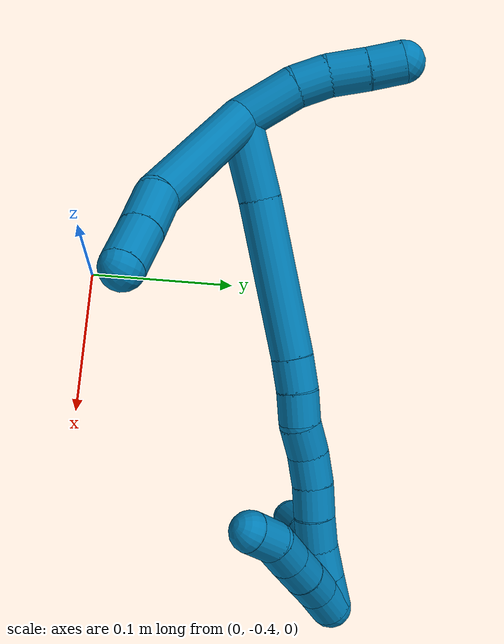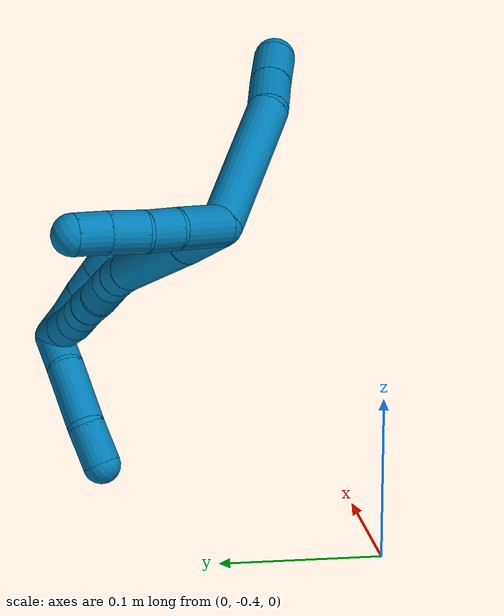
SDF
<sdf version="1.7">
 <world name="default">
  <model name="9">
   <static>0</static>
   <link name="9">
    <collision name="collision-cylinder-e_1_2_8">
     <pose>0.040395 -0.006333 0.025385 0.244479 0.996053 0.133401</pose>
     <geometry><cylinder><radius>0.0125</radius><length>0.096255</length></cylinder></geometry>
     <surface>
      <friction><ode><mu>1.16</mu><mu2>1.16</mu2><slip1>0</slip1><slip2>0</slip2></ode></friction>
      <contact><ode><kp>1e+06</kp><kd>1</kd><max_vel>0</max_vel><min_depth>0.001</min_depth></ode></contact>
     </surface>
    </collision>
    <visual name="visual-cylinder-e_1_2_8">
     <pose>0.040395 -0.006333 0.025385 0.244479 0.996053 0.133401</pose>
     <geometry><cylinder><radius>0.0125</radius><length>0.096255</length></cylinder></geometry>
     <material><ambient>0 0.490196 0.709804 1</ambient></material>
    </visual>
    <collision name="collision-cylinder-e_2_8_9">
     <pose>0.093637 -0.014576 0.054494 0.473979 1.25584 0.347139</pose>
     <geometry><cylinder><radius>0.0125</radius><length>0.027024</length></cylinder></geometry>
     <surface>
      <friction><ode><mu>1.16</mu><mu2>1.16</mu2><slip1>0</slip1><slip2>0</slip2></ode></friction>
      <contact><ode><kp>1e+06</kp><kd>1</kd><max_vel>0</max_vel><min_depth>0.001</min_depth></ode></contact>
     </surface>
    </collision>
    <visual name="visual-cylinder-e_2_8_9">
     <pose>0.093637 -0.014576 0.054494 0.473979 1.25584 0.347139</pose>
     <geometry><cylinder><radius>0.0125</radius><length>0.027024</length></cylinder></geometry>
     <material><ambient>0 0.490196 0.709804 1</ambient></material>
    </visual>
    <collision name="collision-cylinder-e_3_9_6">
     <pose>0.119049 -0.018651 0.06221 0.496771 1.22403 0.352356</pose>
     <geometry><cylinder><radius>0.0125</radius><length>0.026722</length></cylinder></geometry>
     <surface>
      <friction><ode><mu>1.16</mu><mu2>1.16</mu2><slip1>0</slip1><slip2>0</slip2></ode></friction>
      <contact><ode><kp>1e+06</kp><kd>1</kd><max_vel>0</max_vel><min_depth>0.001</min_depth></ode></contact>
     </surface>
    </collision>
    <visual name="visual-cylinder-e_3_9_6">
     <pose>0.119049 -0.018651 0.06221 0.496771 1.22403 0.352356</pose>
     <geometry><cylinder><radius>0.0125</radius><length>0.026722</length></cylinder></geometry>
     <material><ambient>0 0.490196 0.709804 1</ambient></material>
    </visual>
    <collision name="collision-cylinder-e_1_2_10">
     <pose>-0.007306 0.014315 -0.008325 -2.09752 -0.415488 0.702435</pose>
     <geometry><cylinder><radius>0.0125</radius><length>0.0362</length></cylinder></geometry>
     <surface>
      <friction><ode><mu>1.16</mu><mu2>1.16</mu2><slip1>0</slip1><slip2>0</slip2></ode></friction>
      <contact><ode><kp>1e+06</kp><kd>1</kd><max_vel>0</max_vel><min_depth>0.001</min_depth></ode></contact>
     </surface>
    </collision>
    <visual name="visual-cylinder-e_1_2_10">
     <pose>-0.007306 0.014315 -0.008325 -2.09752 -0.415488 0.702435</pose>
     <geometry><cylinder><radius>0.0125</radius><length>0.0362</length></cylinder></geometry>
     <material><ambient>0 0.490196 0.709804 1</ambient></material>
    </visual>
    <collision name="collision-cylinder-e_2_10_11">
     <pose>-0.017249 0.036264 -0.022706 -2.24161 -0.264318 0.537104</pose>
     <geometry><cylinder><radius>0.0125</radius><length>0.020189</length></cylinder></geometry>
     <surface>
      <friction><ode><mu>1.16</mu><mu2>1.16</mu2><slip1>0</slip1><slip2>0</slip2></ode></friction>
      <contact><ode><kp>1e+06</kp><kd>1</kd><max_vel>0</max_vel><min_depth>0.001</min_depth></ode></contact>
     </surface>
    </collision>
    <visual name="visual-cylinder-e_2_10_11">
     <pose>-0.017249 0.036264 -0.022706 -2.24161 -0.264318 0.537104</pose>
     <geometry><cylinder><radius>0.0125</radius><length>0.020189</length></cylinder></geometry>
     <material><ambient>0 0.490196 0.709804 1</ambient></material>
    </visual>
    <collision name="collision-cylinder-e_3_11_12">
     <pose>-0.020819 0.052462 -0.036392 -2.29836 -0.081124 0.180483</pose>
     <geometry><cylinder><radius>0.0125</radius><length>0.023016</length></cylinder></geometry>
     <surface>
      <friction><ode><mu>1.16</mu><mu2>1.16</mu2><slip1>0</slip1><slip2>0</slip2></ode></friction>
      <contact><ode><kp>1e+06</kp><kd>1</kd><max_vel>0</max_vel><min_depth>0.001</min_depth></ode></contact>
     </surface>
    </collision>
    <visual name="visual-cylinder-e_3_11_12">
     <pose>-0.020819 0.052462 -0.036392 -2.29836 -0.081124 0.180483</pose>
     <geometry><cylinder><radius>0.0125</radius><length>0.023016</length></cylinder></geometry>
     <material><ambient>0 0.490196 0.709804 1</ambient></material>
    </visual>
    <collision name="collision-cylinder-e_4_12_5">
     <pose>-0.02321 0.068628 -0.050813 -2.30022 -0.142141 0.315596</pose>
     <geometry><cylinder><radius>0.0125</radius><length>0.020595</length></cylinder></geometry>
     <surface>
      <friction><ode><mu>1.16</mu><mu2>1.16</mu2><slip1>0</slip1><slip2>0</slip2></ode></friction>
      <contact><ode><kp>1e+06</kp><kd>1</kd><max_vel>0</max_vel><min_depth>0.001</min_depth></ode></contact>
     </surface>
    </collision>
    <visual name="visual-cylinder-e_4_12_5">
     <pose>-0.02321 0.068628 -0.050813 -2.30022 -0.142141 0.315596</pose>
     <geometry><cylinder><radius>0.0125</radius><length>0.020595</length></cylinder></geometry>
     <material><ambient>0 0.490196 0.709804 1</ambient></material>
    </visual>
    <collision name="collision-cylinder-e_1_2_13">
     <pose>0.015442 -0.008887 -0.014891 2.60353 0.72752 1.88799</pose>
     <geometry><cylinder><radius>0.0125</radius><length>0.04644</length></cylinder></geometry>
     <surface>
      <friction><ode><mu>1.16</mu><mu2>1.16</mu2><slip1>0</slip1><slip2>0</slip2></ode></friction>
      <contact><ode><kp>1e+06</kp><kd>1</kd><max_vel>0</max_vel><min_depth>0.001</min_depth></ode></contact>
     </surface>
    </collision>
    <visual name="visual-cylinder-e_1_2_13">
     <pose>0.015442 -0.008887 -0.014891 2.60353 0.72752 1.88799</pose>
     <geometry><cylinder><radius>0.0125</radius><length>0.04644</length></cylinder></geometry>
     <material><ambient>0 0.490196 0.709804 1</ambient></material>
    </visual>
    <collision name="collision-cylinder-e_2_13_14">
     <pose>0.063684 -0.035967 -0.05747 2.56024 0.780401 1.8839</pose>
     <geometry><cylinder><radius>0.0125</radius><length>0.093242</length></cylinder></geometry>
     <surface>
      <friction><ode><mu>1.16</mu><mu2>1.16</mu2><slip1>0</slip1><slip2>0</slip2></ode></friction>
      <contact><ode><kp>1e+06</kp><kd>1</kd><max_vel>0</max_vel><min_depth>0.001</min_depth></ode></contact>
     </surface>
    </collision>
    <visual name="visual-cylinder-e_2_13_14">
     <pose>0.063684 -0.035967 -0.05747 2.56024 0.780401 1.8839</pose>
     <geometry><cylinder><radius>0.0125</radius><length>0.093242</length></cylinder></geometry>
     <material><ambient>0 0.490196 0.709804 1</ambient></material>
    </visual>
    <collision name="collision-cylinder-e_3_14_15">
     <pose>0.103429 -0.058508 -0.090907 2.49419 0.766784 1.75394</pose>
     <geometry><cylinder><radius>0.0125</radius><length>0.020018</length></cylinder></geometry>
     <surface>
      <friction><ode><mu>1.16</mu><mu2>1.16</mu2><slip1>0</slip1><slip2>0</slip2></ode></friction>
      <contact><ode><kp>1e+06</kp><kd>1</kd><max_vel>0</max_vel><min_depth>0.001</min_depth></ode></contact>
     </surface>
    </collision>
    <visual name="visual-cylinder-e_3_14_15">
     <pose>0.103429 -0.058508 -0.090907 2.49419 0.766784 1.75394</pose>
     <geometry><cylinder><radius>0.0125</radius><length>0.020018</length></cylinder></geometry>
     <material><ambient>0 0.490196 0.709804 1</ambient></material>
    </visual>
    <collision name="collision-cylinder-e_4_15_16">
     <pose>0.116966 -0.068061 -0.102093 2.37793 0.719302 1.50514</pose>
     <geometry><cylinder><radius>0.0125</radius><length>0.020012</length></cylinder></geometry>
     <surface>
      <friction><ode><mu>1.16</mu><mu2>1.16</mu2><slip1>0</slip1><slip2>0</slip2></ode></friction>
      <contact><ode><kp>1e+06</kp><kd>1</kd><max_vel>0</max_vel><min_depth>0.001</min_depth></ode></contact>
     </surface>
    </collision>
    <visual name="visual-cylinder-e_4_15_16">
     <pose>0.116966 -0.068061 -0.102093 2.37793 0.719302 1.50514</pose>
     <geometry><cylinder><radius>0.0125</radius><length>0.020012</length></cylinder></geometry>
     <material><ambient>0 0.490196 0.709804 1</ambient></material>
    </visual>
    <collision name="collision-cylinder-e_5_16_17">
     <pose>0.128423 -0.078059 -0.11503 2.573 0.50021 1.43677</pose>
     <geometry><cylinder><radius>0.0125</radius><length>0.020286</length></cylinder></geometry>
     <surface>
      <friction><ode><mu>1.16</mu><mu2>1.16</mu2><slip1>0</slip1><slip2>0</slip2></ode></friction>
      <contact><ode><kp>1e+06</kp><kd>1</kd><max_vel>0</max_vel><min_depth>0.001</min_depth></ode></contact>
     </surface>
    </collision>
    <visual name="visual-cylinder-e_5_16_17">
     <pose>0.128423 -0.078059 -0.11503 2.573 0.50021 1.43677</pose>
     <geometry><cylinder><radius>0.0125</radius><length>0.020286</length></cylinder></geometry>
     <material><ambient>0 0.490196 0.709804 1</ambient></material>
    </visual>
    <collision name="collision-cylinder-e_6_17_18">
     <pose>0.139555 -0.087611 -0.128701 2.48453 0.677243 1.60342</pose>
     <geometry><cylinder><radius>0.0125</radius><length>0.020001</length></cylinder></geometry>
     <surface>
      <friction><ode><mu>1.16</mu><mu2>1.16</mu2><slip1>0</slip1><slip2>0</slip2></ode></friction>
      <contact><ode><kp>1e+06</kp><kd>1</kd><max_vel>0</max_vel><min_depth>0.001</min_depth></ode></contact>
     </surface>
    </collision>
    <visual name="visual-cylinder-e_6_17_18">
     <pose>0.139555 -0.087611 -0.128701 2.48453 0.677243 1.60342</pose>
     <geometry><cylinder><radius>0.0125</radius><length>0.020001</length></cylinder></geometry>
     <material><ambient>0 0.490196 0.709804 1</ambient></material>
    </visual>
    <collision name="collision-cylinder-e_7_18_19">
     <pose>0.152438 -0.097678 -0.14017 2.35542 0.72295 1.47858</pose>
     <geometry><cylinder><radius>0.0125</radius><length>0.020001</length></cylinder></geometry>
     <surface>
      <friction><ode><mu>1.16</mu><mu2>1.16</mu2><slip1>0</slip1><slip2>0</slip2></ode></friction>
      <contact><ode><kp>1e+06</kp><kd>1</kd><max_vel>0</max_vel><min_depth>0.001</min_depth></ode></contact>
     </surface>
    </collision>
    <visual name="visual-cylinder-e_7_18_19">
     <pose>0.152438 -0.097678 -0.14017 2.35542 0.72295 1.47858</pose>
     <geometry><cylinder><radius>0.0125</radius><length>0.020001</length></cylinder></geometry>
     <material><ambient>0 0.490196 0.709804 1</ambient></material>
    </visual>
    <collision name="collision-cylinder-e_8_19_20">
     <pose>0.165108 -0.108331 -0.151366 2.40521 0.650159 1.43611</pose>
     <geometry><cylinder><radius>0.0125</radius><length>0.02</length></cylinder></geometry>
     <surface>
      <friction><ode><mu>1.16</mu><mu2>1.16</mu2><slip1>0</slip1><slip2>0</slip2></ode></friction>
      <contact><ode><kp>1e+06</kp><kd>1</kd><max_vel>0</max_vel><min_depth>0.001</min_depth></ode></contact>
     </surface>
    </collision>
    <visual name="visual-cylinder-e_8_19_20">
     <pose>0.165108 -0.108331 -0.151366 2.40521 0.650159 1.43611</pose>
     <geometry><cylinder><radius>0.0125</radius><length>0.02</length></cylinder></geometry>
     <material><ambient>0 0.490196 0.709804 1</ambient></material>
    </visual>
    <collision name="collision-cylinder-e_9_20_21">
     <pose>0.177591 -0.117971 -0.163605 2.54635 0.698392 1.74147</pose>
     <geometry><cylinder><radius>0.0125</radius><length>0.02</length></cylinder></geometry>
     <surface>
      <friction><ode><mu>1.16</mu><mu2>1.16</mu2><slip1>0</slip1><slip2>0</slip2></ode></friction>
      <contact><ode><kp>1e+06</kp><kd>1</kd><max_vel>0</max_vel><min_depth>0.001</min_depth></ode></contact>
     </surface>
    </collision>
    <visual name="visual-cylinder-e_9_20_21">
     <pose>0.177591 -0.117971 -0.163605 2.54635 0.698392 1.74147</pose>
     <geometry><cylinder><radius>0.0125</radius><length>0.02</length></cylinder></geometry>
     <material><ambient>0 0.490196 0.709804 1</ambient></material>
    </visual>
    <collision name="collision-cylinder-e_10_21_1">
     <pose>0.190383 -0.126478 -0.176411 2.56407 0.689536 1.75936</pose>
     <geometry><cylinder><radius>0.0125</radius><length>0.02</length></cylinder></geometry>
     <surface>
      <friction><ode><mu>1.16</mu><mu2>1.16</mu2><slip1>0</slip1><slip2>0</slip2></ode></friction>
      <contact><ode><kp>1e+06</kp><kd>1</kd><max_vel>0</max_vel><min_depth>0.001</min_depth></ode></contact>
     </surface>
    </collision>
    <visual name="visual-cylinder-e_10_21_1">
     <pose>0.190383 -0.126478 -0.176411 2.56407 0.689536 1.75936</pose>
     <geometry><cylinder><radius>0.0125</radius><length>0.02</length></cylinder></geometry>
     <material><ambient>0 0.490196 0.709804 1</ambient></material>
    </visual>
    <collision name="collision-cylinder-e_1_1_22">
     <pose>0.195324 -0.127162 -0.173627 -0.364474 -0.142515 0.026306</pose>
     <geometry><cylinder><radius>0.0125</radius><length>0.02</length></cylinder></geometry>
     <surface>
      <friction><ode><mu>1.16</mu><mu2>1.16</mu2><slip1>0</slip1><slip2>0</slip2></ode></friction>
      <contact><ode><kp>1e+06</kp><kd>1</kd><max_vel>0</max_vel><min_depth>0.001</min_depth></ode></contact>
     </surface>
    </collision>
    <visual name="visual-cylinder-e_1_1_22">
     <pose>0.195324 -0.127162 -0.173627 -0.364474 -0.142515 0.026306</pose>
     <geometry><cylinder><radius>0.0125</radius><length>0.02</length></cylinder></geometry>
     <material><ambient>0 0.490196 0.709804 1</ambient></material>
    </visual>
    <collision name="collision-cylinder-e_2_22_23">
     <pose>0.193674 -0.119795 -0.155147 -0.394072 -0.022969 0.004585</pose>
     <geometry><cylinder><radius>0.0125</radius><length>0.02</length></cylinder></geometry>
     <surface>
      <friction><ode><mu>1.16</mu><mu2>1.16</mu2><slip1>0</slip1><slip2>0</slip2></ode></friction>
      <contact><ode><kp>1e+06</kp><kd>1</kd><max_vel>0</max_vel><min_depth>0.001</min_depth></ode></contact>
     </surface>
    </collision>
    <visual name="visual-cylinder-e_2_22_23">
     <pose>0.193674 -0.119795 -0.155147 -0.394072 -0.022969 0.004585</pose>
     <geometry><cylinder><radius>0.0125</radius><length>0.02</length></cylinder></geometry>
     <material><ambient>0 0.490196 0.709804 1</ambient></material>
    </visual>
    <collision name="collision-cylinder-e_3_23_24">
     <pose>0.19265 -0.112474 -0.136576 -0.356883 -0.079572 0.014359</pose>
     <geometry><cylinder><radius>0.0125</radius><length>0.02</length></cylinder></geometry>
     <surface>
      <friction><ode><mu>1.16</mu><mu2>1.16</mu2><slip1>0</slip1><slip2>0</slip2></ode></friction>
      <contact><ode><kp>1e+06</kp><kd>1</kd><max_vel>0</max_vel><min_depth>0.001</min_depth></ode></contact>
     </surface>
    </collision>
    <visual name="visual-cylinder-e_3_23_24">
     <pose>0.19265 -0.112474 -0.136576 -0.356883 -0.079572 0.014359</pose>
     <geometry><cylinder><radius>0.0125</radius><length>0.02</length></cylinder></geometry>
     <material><ambient>0 0.490196 0.709804 1</ambient></material>
    </visual>
    <collision name="collision-cylinder-e_4_24_25">
     <pose>0.190999 -0.105328 -0.11797 -0.376483 -0.085626 0.016321</pose>
     <geometry><cylinder><radius>0.0125</radius><length>0.02</length></cylinder></geometry>
     <surface>
      <friction><ode><mu>1.16</mu><mu2>1.16</mu2><slip1>0</slip1><slip2>0</slip2></ode></friction>
      <contact><ode><kp>1e+06</kp><kd>1</kd><max_vel>0</max_vel><min_depth>0.001</min_depth></ode></contact>
     </surface>
    </collision>
    <visual name="visual-cylinder-e_4_24_25">
     <pose>0.190999 -0.105328 -0.11797 -0.376483 -0.085626 0.016321</pose>
     <geometry><cylinder><radius>0.0125</radius><length>0.02</length></cylinder></geometry>
     <material><ambient>0 0.490196 0.709804 1</ambient></material>
    </visual>
    <collision name="collision-cylinder-e_5_25_4">
     <pose>0.190719 -0.100777 -0.098761 -0.089036 0.057549 -0.002564</pose>
     <geometry><cylinder><radius>0.0125</radius><length>0.02</length></cylinder></geometry>
     <surface>
      <friction><ode><mu>1.16</mu><mu2>1.16</mu2><slip1>0</slip1><slip2>0</slip2></ode></friction>
      <contact><ode><kp>1e+06</kp><kd>1</kd><max_vel>0</max_vel><min_depth>0.001</min_depth></ode></contact>
     </surface>
    </collision>
    <visual name="visual-cylinder-e_5_25_4">
     <pose>0.190719 -0.100777 -0.098761 -0.089036 0.057549 -0.002564</pose>
     <geometry><cylinder><radius>0.0125</radius><length>0.02</length></cylinder></geometry>
     <material><ambient>0 0.490196 0.709804 1</ambient></material>
    </visual>
    <collision name="collision-cylinder-e_1_1_26">
     <pose>0.183522 -0.133914 -0.183804 1.8514 -1.32227 -1.60403</pose>
     <geometry><cylinder><radius>0.0125</radius><length>0.027284</length></cylinder></geometry>
     <surface>
      <friction><ode><mu>1.16</mu><mu2>1.16</mu2><slip1>0</slip1><slip2>0</slip2></ode></friction>
      <contact><ode><kp>1e+06</kp><kd>1</kd><max_vel>0</max_vel><min_depth>0.001</min_depth></ode></contact>
     </surface>
    </collision>
    <visual name="visual-cylinder-e_1_1_26">
     <pose>0.183522 -0.133914 -0.183804 1.8514 -1.32227 -1.60403</pose>
     <geometry><cylinder><radius>0.0125</radius><length>0.027284</length></cylinder></geometry>
     <material><ambient>0 0.490196 0.709804 1</ambient></material>
    </visual>
    <collision name="collision-cylinder-e_2_26_27">
     <pose>0.150334 -0.146181 -0.18839 1.95507 -1.11637 -1.49405</pose>
     <geometry><cylinder><radius>0.0125</radius><length>0.044441</length></cylinder></geometry>
     <surface>
      <friction><ode><mu>1.16</mu><mu2>1.16</mu2><slip1>0</slip1><slip2>0</slip2></ode></friction>
      <contact><ode><kp>1e+06</kp><kd>1</kd><max_vel>0</max_vel><min_depth>0.001</min_depth></ode></contact>
     </surface>
    </collision>
    <visual name="visual-cylinder-e_2_26_27">
     <pose>0.150334 -0.146181 -0.18839 1.95507 -1.11637 -1.49405</pose>
     <geometry><cylinder><radius>0.0125</radius><length>0.044441</length></cylinder></geometry>
     <material><ambient>0 0.490196 0.709804 1</ambient></material>
    </visual>
    <collision name="collision-cylinder-e_3_27_3">
     <pose>0.120278 -0.164566 -0.195328 1.90854 -0.794766 -1.06939</pose>
     <geometry><cylinder><radius>0.0125</radius><length>0.028276</length></cylinder></geometry>
     <surface>
      <friction><ode><mu>1.16</mu><mu2>1.16</mu2><slip1>0</slip1><slip2>0</slip2></ode></friction>
      <contact><ode><kp>1e+06</kp><kd>1</kd><max_vel>0</max_vel><min_depth>0.001</min_depth></ode></contact>
     </surface>
    </collision>
    <visual name="visual-cylinder-e_3_27_3">
     <pose>0.120278 -0.164566 -0.195328 1.90854 -0.794766 -1.06939</pose>
     <geometry><cylinder><radius>0.0125</radius><length>0.028276</length></cylinder></geometry>
     <material><ambient>0 0.490196 0.709804 1</ambient></material>
    </visual>
    <collision name="collision-sphere-3">
     <pose>0.110188 -0.17391 -0.198609 0 -0 0</pose>
     <geometry><sphere><radius>0.0125</radius></sphere></geometry>
     <surface>
      <friction><ode><mu>1.16</mu><mu2>1.16</mu2><slip1>0</slip1><slip2>0</slip2></ode></friction>
      <contact><ode><kp>1e+06</kp><kd>1</kd><max_vel>0</max_vel><min_depth>0.001</min_depth></ode></contact>
     </surface>
    </collision>
    <visual name="visual-sphere-3">
     <pose>0.110188 -0.17391 -0.198609 0 -0 0</pose>
     <geometry><sphere><radius>0.0125</radius></sphere></geometry>
     <material><ambient>0 0.490196 0.709804 1</ambient></material>
    </visual>
    <collision name="collision-sphere-27">
     <pose>0.130368 -0.155223 -0.192047 0 -0 0</pose>
     <geometry><sphere><radius>0.0125</radius></sphere></geometry>
     <surface>
      <friction><ode><mu>1.16</mu><mu2>1.16</mu2><slip1>0</slip1><slip2>0</slip2></ode></friction>
      <contact><ode><kp>1e+06</kp><kd>1</kd><max_vel>0</max_vel><min_depth>0.001</min_depth></ode></contact>
     </surface>
    </collision>
    <visual name="visual-sphere-27">
     <pose>0.130368 -0.155223 -0.192047 0 -0 0</pose>
     <geometry><sphere><radius>0.0125</radius></sphere></geometry>
     <material><ambient>0 0.490196 0.709804 1</ambient></material>
    </visual>
    <collision name="collision-sphere-26">
     <pose>0.170299 -0.137139 -0.184734 0 -0 0</pose>
     <geometry><sphere><radius>0.0125</radius></sphere></geometry>
     <surface>
      <friction><ode><mu>1.16</mu><mu2>1.16</mu2><slip1>0</slip1><slip2>0</slip2></ode></friction>
      <contact><ode><kp>1e+06</kp><kd>1</kd><max_vel>0</max_vel><min_depth>0.001</min_depth></ode></contact>
     </surface>
    </collision>
    <visual name="visual-sphere-26">
     <pose>0.170299 -0.137139 -0.184734 0 -0 0</pose>
     <geometry><sphere><radius>0.0125</radius></sphere></geometry>
     <material><ambient>0 0.490196 0.709804 1</ambient></material>
    </visual>
    <collision name="collision-sphere-4">
     <pose>0.191295 -0.09989 -0.088817 0 -0 0</pose>
     <geometry><sphere><radius>0.0125</radius></sphere></geometry>
     <surface>
      <friction><ode><mu>1.16</mu><mu2>1.16</mu2><slip1>0</slip1><slip2>0</slip2></ode></friction>
      <contact><ode><kp>1e+06</kp><kd>1</kd><max_vel>0</max_vel><min_depth>0.001</min_depth></ode></contact>
     </surface>
    </collision>
    <visual name="visual-sphere-4">
     <pose>0.191295 -0.09989 -0.088817 0 -0 0</pose>
     <geometry><sphere><radius>0.0125</radius></sphere></geometry>
     <material><ambient>0 0.490196 0.709804 1</ambient></material>
    </visual>
    <collision name="collision-sphere-25">
     <pose>0.190144 -0.101665 -0.108704 0 -0 0</pose>
     <geometry><sphere><radius>0.0125</radius></sphere></geometry>
     <surface>
      <friction><ode><mu>1.16</mu><mu2>1.16</mu2><slip1>0</slip1><slip2>0</slip2></ode></friction>
      <contact><ode><kp>1e+06</kp><kd>1</kd><max_vel>0</max_vel><min_depth>0.001</min_depth></ode></contact>
     </surface>
    </collision>
    <visual name="visual-sphere-25">
     <pose>0.190144 -0.101665 -0.108704 0 -0 0</pose>
     <geometry><sphere><radius>0.0125</radius></sphere></geometry>
     <material><ambient>0 0.490196 0.709804 1</ambient></material>
    </visual>
    <collision name="collision-sphere-24">
     <pose>0.191855 -0.108991 -0.127236 0 -0 0</pose>
     <geometry><sphere><radius>0.0125</radius></sphere></geometry>
     <surface>
      <friction><ode><mu>1.16</mu><mu2>1.16</mu2><slip1>0</slip1><slip2>0</slip2></ode></friction>
      <contact><ode><kp>1e+06</kp><kd>1</kd><max_vel>0</max_vel><min_depth>0.001</min_depth></ode></contact>
     </surface>
    </collision>
    <visual name="visual-sphere-24">
     <pose>0.191855 -0.108991 -0.127236 0 -0 0</pose>
     <geometry><sphere><radius>0.0125</radius></sphere></geometry>
     <material><ambient>0 0.490196 0.709804 1</ambient></material>
    </visual>
    <collision name="collision-sphere-23">
     <pose>0.193444 -0.115956 -0.145916 0 -0 0</pose>
     <geometry><sphere><radius>0.0125</radius></sphere></geometry>
     <surface>
      <friction><ode><mu>1.16</mu><mu2>1.16</mu2><slip1>0</slip1><slip2>0</slip2></ode></friction>
      <contact><ode><kp>1e+06</kp><kd>1</kd><max_vel>0</max_vel><min_depth>0.001</min_depth></ode></contact>
     </surface>
    </collision>
    <visual name="visual-sphere-23">
     <pose>0.193444 -0.115956 -0.145916 0 -0 0</pose>
     <geometry><sphere><radius>0.0125</radius></sphere></geometry>
     <material><ambient>0 0.490196 0.709804 1</ambient></material>
    </visual>
    <collision name="collision-sphere-22">
     <pose>0.193904 -0.123633 -0.164378 0 -0 0</pose>
     <geometry><sphere><radius>0.0125</radius></sphere></geometry>
     <surface>
      <friction><ode><mu>1.16</mu><mu2>1.16</mu2><slip1>0</slip1><slip2>0</slip2></ode></friction>
      <contact><ode><kp>1e+06</kp><kd>1</kd><max_vel>0</max_vel><min_depth>0.001</min_depth></ode></contact>
     </surface>
    </collision>
    <visual name="visual-sphere-22">
     <pose>0.193904 -0.123633 -0.164378 0 -0 0</pose>
     <geometry><sphere><radius>0.0125</radius></sphere></geometry>
     <material><ambient>0 0.490196 0.709804 1</ambient></material>
    </visual>
    <collision name="collision-sphere-1">
     <pose>0.196744 -0.13069 -0.182875 0 -0 0</pose>
     <geometry><sphere><radius>0.0125</radius></sphere></geometry>
     <surface>
      <friction><ode><mu>1.16</mu><mu2>1.16</mu2><slip1>0</slip1><slip2>0</slip2></ode></friction>
      <contact><ode><kp>1e+06</kp><kd>1</kd><max_vel>0</max_vel><min_depth>0.001</min_depth></ode></contact>
     </surface>
    </collision>
    <visual name="visual-sphere-1">
     <pose>0.196744 -0.13069 -0.182875 0 -0 0</pose>
     <geometry><sphere><radius>0.0125</radius></sphere></geometry>
     <material><ambient>0 0.490196 0.709804 1</ambient></material>
    </visual>
    <collision name="collision-sphere-21">
     <pose>0.184021 -0.122266 -0.169947 0 -0 0</pose>
     <geometry><sphere><radius>0.0125</radius></sphere></geometry>
     <surface>
      <friction><ode><mu>1.16</mu><mu2>1.16</mu2><slip1>0</slip1><slip2>0</slip2></ode></friction>
      <contact><ode><kp>1e+06</kp><kd>1</kd><max_vel>0</max_vel><min_depth>0.001</min_depth></ode></contact>
     </surface>
    </collision>
    <visual name="visual-sphere-21">
     <pose>0.184021 -0.122266 -0.169947 0 -0 0</pose>
     <geometry><sphere><radius>0.0125</radius></sphere></geometry>
     <material><ambient>0 0.490196 0.709804 1</ambient></material>
    </visual>
    <collision name="collision-sphere-11">
     <pose>-0.019886 0.043896 -0.028763 0 -0 0</pose>
     <geometry><sphere><radius>0.0125</radius></sphere></geometry>
     <surface>
      <friction><ode><mu>1.16</mu><mu2>1.16</mu2><slip1>0</slip1><slip2>0</slip2></ode></friction>
      <contact><ode><kp>1e+06</kp><kd>1</kd><max_vel>0</max_vel><min_depth>0.001</min_depth></ode></contact>
     </surface>
    </collision>
    <visual name="visual-sphere-11">
     <pose>-0.019886 0.043896 -0.028763 0 -0 0</pose>
     <geometry><sphere><radius>0.0125</radius></sphere></geometry>
     <material><ambient>0 0.490196 0.709804 1</ambient></material>
    </visual>
    <collision name="collision-sphere-10">
     <pose>-0.014612 0.028631 -0.016649 0 -0 0</pose>
     <geometry><sphere><radius>0.0125</radius></sphere></geometry>
     <surface>
      <friction><ode><mu>1.16</mu><mu2>1.16</mu2><slip1>0</slip1><slip2>0</slip2></ode></friction>
      <contact><ode><kp>1e+06</kp><kd>1</kd><max_vel>0</max_vel><min_depth>0.001</min_depth></ode></contact>
     </surface>
    </collision>
    <visual name="visual-sphere-10">
     <pose>-0.014612 0.028631 -0.016649 0 -0 0</pose>
     <geometry><sphere><radius>0.0125</radius></sphere></geometry>
     <material><ambient>0 0.490196 0.709804 1</ambient></material>
    </visual>
    <collision name="collision-sphere-6">
     <pose>0.131615 -0.020815 0.066202 0 -0 0</pose>
     <geometry><sphere><radius>0.0125</radius></sphere></geometry>
     <surface>
      <friction><ode><mu>1.16</mu><mu2>1.16</mu2><slip1>0</slip1><slip2>0</slip2></ode></friction>
      <contact><ode><kp>1e+06</kp><kd>1</kd><max_vel>0</max_vel><min_depth>0.001</min_depth></ode></contact>
     </surface>
    </collision>
    <visual name="visual-sphere-6">
     <pose>0.131615 -0.020815 0.066202 0 -0 0</pose>
     <geometry><sphere><radius>0.0125</radius></sphere></geometry>
     <material><ambient>0 0.490196 0.709804 1</ambient></material>
    </visual>
    <collision name="collision-sphere-9">
     <pose>0.106484 -0.016486 0.058218 0 -0 0</pose>
     <geometry><sphere><radius>0.0125</radius></sphere></geometry>
     <surface>
      <friction><ode><mu>1.16</mu><mu2>1.16</mu2><slip1>0</slip1><slip2>0</slip2></ode></friction>
      <contact><ode><kp>1e+06</kp><kd>1</kd><max_vel>0</max_vel><min_depth>0.001</min_depth></ode></contact>
     </surface>
    </collision>
    <visual name="visual-sphere-9">
     <pose>0.106484 -0.016486 0.058218 0 -0 0</pose>
     <geometry><sphere><radius>0.0125</radius></sphere></geometry>
     <material><ambient>0 0.490196 0.709804 1</ambient></material>
    </visual>
    <collision name="collision-sphere-2">
     <geometry><sphere><radius>0.0125</radius></sphere></geometry>
     <surface>
      <friction><ode><mu>1.16</mu><mu2>1.16</mu2><slip1>0</slip1><slip2>0</slip2></ode></friction>
      <contact><ode><kp>1e+06</kp><kd>1</kd><max_vel>0</max_vel><min_depth>0.001</min_depth></ode></contact>
     </surface>
    </collision>
    <visual name="visual-sphere-2">
     <geometry><sphere><radius>0.0125</radius></sphere></geometry>
     <material><ambient>0 0.490196 0.709804 1</ambient></material>
    </visual>
    <collision name="collision-sphere-19">
     <pose>0.159055 -0.102985 -0.145468 0 -0 0</pose>
     <geometry><sphere><radius>0.0125</radius></sphere></geometry>
     <surface>
      <friction><ode><mu>1.16</mu><mu2>1.16</mu2><slip1>0</slip1><slip2>0</slip2></ode></friction>
      <contact><ode><kp>1e+06</kp><kd>1</kd><max_vel>0</max_vel><min_depth>0.001</min_depth></ode></contact>
     </surface>
    </collision>
    <visual name="visual-sphere-19">
     <pose>0.159055 -0.102985 -0.145468 0 -0 0</pose>
     <geometry><sphere><radius>0.0125</radius></sphere></geometry>
     <material><ambient>0 0.490196 0.709804 1</ambient></material>
    </visual>
    <collision name="collision-sphere-8">
     <pose>0.08079 -0.012666 0.05077 0 -0 0</pose>
     <geometry><sphere><radius>0.0125</radius></sphere></geometry>
     <surface>
      <friction><ode><mu>1.16</mu><mu2>1.16</mu2><slip1>0</slip1><slip2>0</slip2></ode></friction>
      <contact><ode><kp>1e+06</kp><kd>1</kd><max_vel>0</max_vel><min_depth>0.001</min_depth></ode></contact>
     </surface>
    </collision>
    <visual name="visual-sphere-8">
     <pose>0.08079 -0.012666 0.05077 0 -0 0</pose>
     <geometry><sphere><radius>0.0125</radius></sphere></geometry>
     <material><ambient>0 0.490196 0.709804 1</ambient></material>
    </visual>
    <collision name="collision-sphere-12">
     <pose>-0.021751 0.061028 -0.04402 0 -0 0</pose>
     <geometry><sphere><radius>0.0125</radius></sphere></geometry>
     <surface>
      <friction><ode><mu>1.16</mu><mu2>1.16</mu2><slip1>0</slip1><slip2>0</slip2></ode></friction>
      <contact><ode><kp>1e+06</kp><kd>1</kd><max_vel>0</max_vel><min_depth>0.001</min_depth></ode></contact>
     </surface>
    </collision>
    <visual name="visual-sphere-12">
     <pose>-0.021751 0.061028 -0.04402 0 -0 0</pose>
     <geometry><sphere><radius>0.0125</radius></sphere></geometry>
     <material><ambient>0 0.490196 0.709804 1</ambient></material>
    </visual>
    <collision name="collision-sphere-5">
     <pose>-0.024669 0.076228 -0.057607 0 -0 0</pose>
     <geometry><sphere><radius>0.0125</radius></sphere></geometry>
     <surface>
      <friction><ode><mu>1.16</mu><mu2>1.16</mu2><slip1>0</slip1><slip2>0</slip2></ode></friction>
      <contact><ode><kp>1e+06</kp><kd>1</kd><max_vel>0</max_vel><min_depth>0.001</min_depth></ode></contact>
     </surface>
    </collision>
    <visual name="visual-sphere-5">
     <pose>-0.024669 0.076228 -0.057607 0 -0 0</pose>
     <geometry><sphere><radius>0.0125</radius></sphere></geometry>
     <material><ambient>0 0.490196 0.709804 1</ambient></material>
    </visual>
    <collision name="collision-sphere-13">
     <pose>0.030883 -0.017774 -0.029782 0 -0 0</pose>
     <geometry><sphere><radius>0.0125</radius></sphere></geometry>
     <surface>
      <friction><ode><mu>1.16</mu><mu2>1.16</mu2><slip1>0</slip1><slip2>0</slip2></ode></friction>
      <contact><ode><kp>1e+06</kp><kd>1</kd><max_vel>0</max_vel><min_depth>0.001</min_depth></ode></contact>
     </surface>
    </collision>
    <visual name="visual-sphere-13">
     <pose>0.030883 -0.017774 -0.029782 0 -0 0</pose>
     <geometry><sphere><radius>0.0125</radius></sphere></geometry>
     <material><ambient>0 0.490196 0.709804 1</ambient></material>
    </visual>
    <collision name="collision-sphere-14">
     <pose>0.096485 -0.054161 -0.085157 0 -0 0</pose>
     <geometry><sphere><radius>0.0125</radius></sphere></geometry>
     <surface>
      <friction><ode><mu>1.16</mu><mu2>1.16</mu2><slip1>0</slip1><slip2>0</slip2></ode></friction>
      <contact><ode><kp>1e+06</kp><kd>1</kd><max_vel>0</max_vel><min_depth>0.001</min_depth></ode></contact>
     </surface>
    </collision>
    <visual name="visual-sphere-14">
     <pose>0.096485 -0.054161 -0.085157 0 -0 0</pose>
     <geometry><sphere><radius>0.0125</radius></sphere></geometry>
     <material><ambient>0 0.490196 0.709804 1</ambient></material>
    </visual>
    <collision name="collision-sphere-15">
     <pose>0.110374 -0.062855 -0.096656 0 -0 0</pose>
     <geometry><sphere><radius>0.0125</radius></sphere></geometry>
     <surface>
      <friction><ode><mu>1.16</mu><mu2>1.16</mu2><slip1>0</slip1><slip2>0</slip2></ode></friction>
      <contact><ode><kp>1e+06</kp><kd>1</kd><max_vel>0</max_vel><min_depth>0.001</min_depth></ode></contact>
     </surface>
    </collision>
    <visual name="visual-sphere-15">
     <pose>0.110374 -0.062855 -0.096656 0 -0 0</pose>
     <geometry><sphere><radius>0.0125</radius></sphere></geometry>
     <material><ambient>0 0.490196 0.709804 1</ambient></material>
    </visual>
    <collision name="collision-sphere-16">
     <pose>0.123559 -0.073266 -0.10753 0 -0 0</pose>
     <geometry><sphere><radius>0.0125</radius></sphere></geometry>
     <surface>
      <friction><ode><mu>1.16</mu><mu2>1.16</mu2><slip1>0</slip1><slip2>0</slip2></ode></friction>
      <contact><ode><kp>1e+06</kp><kd>1</kd><max_vel>0</max_vel><min_depth>0.001</min_depth></ode></contact>
     </surface>
    </collision>
    <visual name="visual-sphere-16">
     <pose>0.123559 -0.073266 -0.10753 0 -0 0</pose>
     <geometry><sphere><radius>0.0125</radius></sphere></geometry>
     <material><ambient>0 0.490196 0.709804 1</ambient></material>
    </visual>
    <collision name="collision-sphere-17">
     <pose>0.133288 -0.082851 -0.12253 0 -0 0</pose>
     <geometry><sphere><radius>0.0125</radius></sphere></geometry>
     <surface>
      <friction><ode><mu>1.16</mu><mu2>1.16</mu2><slip1>0</slip1><slip2>0</slip2></ode></friction>
      <contact><ode><kp>1e+06</kp><kd>1</kd><max_vel>0</max_vel><min_depth>0.001</min_depth></ode></contact>
     </surface>
    </collision>
    <visual name="visual-sphere-17">
     <pose>0.133288 -0.082851 -0.12253 0 -0 0</pose>
     <geometry><sphere><radius>0.0125</radius></sphere></geometry>
     <material><ambient>0 0.490196 0.709804 1</ambient></material>
    </visual>
    <collision name="collision-sphere-18">
     <pose>0.145822 -0.092372 -0.134871 0 -0 0</pose>
     <geometry><sphere><radius>0.0125</radius></sphere></geometry>
     <surface>
      <friction><ode><mu>1.16</mu><mu2>1.16</mu2><slip1>0</slip1><slip2>0</slip2></ode></friction>
      <contact><ode><kp>1e+06</kp><kd>1</kd><max_vel>0</max_vel><min_depth>0.001</min_depth></ode></contact>
     </surface>
    </collision>
    <visual name="visual-sphere-18">
     <pose>0.145822 -0.092372 -0.134871 0 -0 0</pose>
     <geometry><sphere><radius>0.0125</radius></sphere></geometry>
     <material><ambient>0 0.490196 0.709804 1</ambient></material>
    </visual>
    <collision name="collision-sphere-20">
     <pose>0.171161 -0.113677 -0.157263 0 -0 0</pose>
     <geometry><sphere><radius>0.0125</radius></sphere></geometry>
     <surface>
      <friction><ode><mu>1.16</mu><mu2>1.16</mu2><slip1>0</slip1><slip2>0</slip2></ode></friction>
      <contact><ode><kp>1e+06</kp><kd>1</kd><max_vel>0</max_vel><min_depth>0.001</min_depth></ode></contact>
     </surface>
    </collision>
    <visual name="visual-sphere-20">
     <pose>0.171161 -0.113677 -0.157263 0 -0 0</pose>
     <geometry><sphere><radius>0.0125</radius></sphere></geometry>
     <material><ambient>0 0.490196 0.709804 1</ambient></material>
    </visual>
    <inertial>
     <pose>0.096746 -0.056519 -0.076092 0 -0 0</pose>
     <mass>0.75</mass>
     <inertia>
      <ixx>0.000128</ixx>
      <ixy>0</ixy>
      <ixz>0</ixz>
      <iyy>0.000214</iyy>
      <iyz>0</iyz>
      <izz>-8.1e-05</izz>
     </inertia>
    </inertial>
   </link>
   <pose>-0.027947 -0.297387 0.21734 0.827638 -0.366104 0.119215</pose>
  </model>
 </world>
</sdf>
